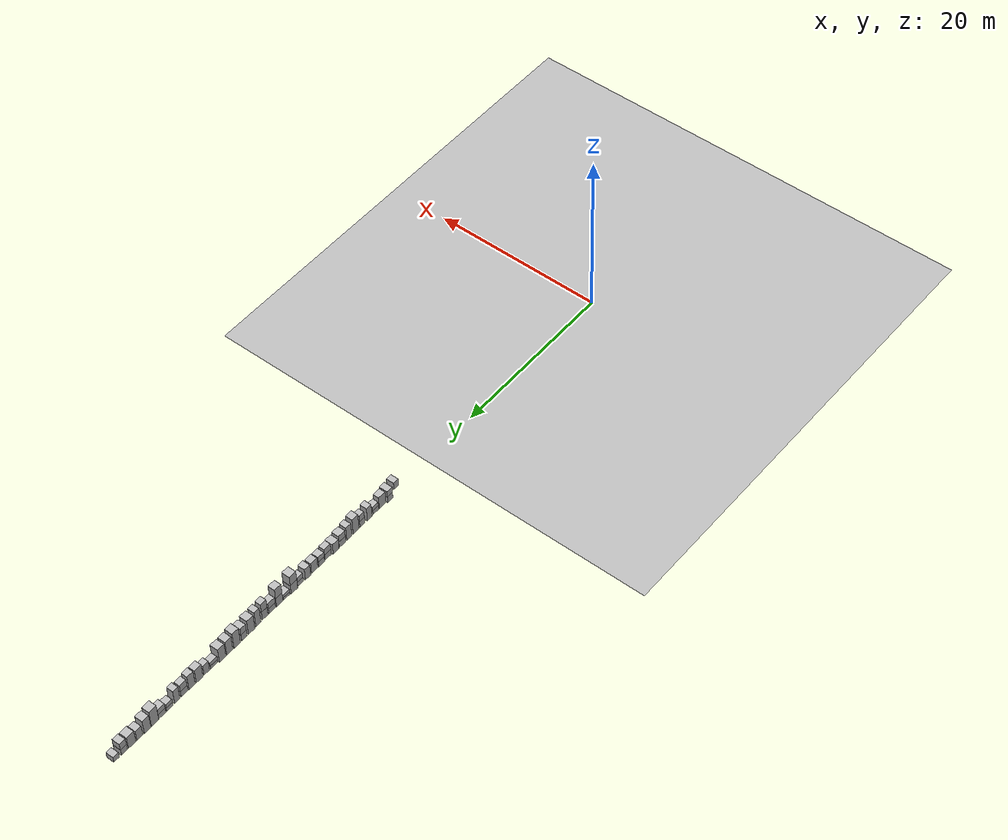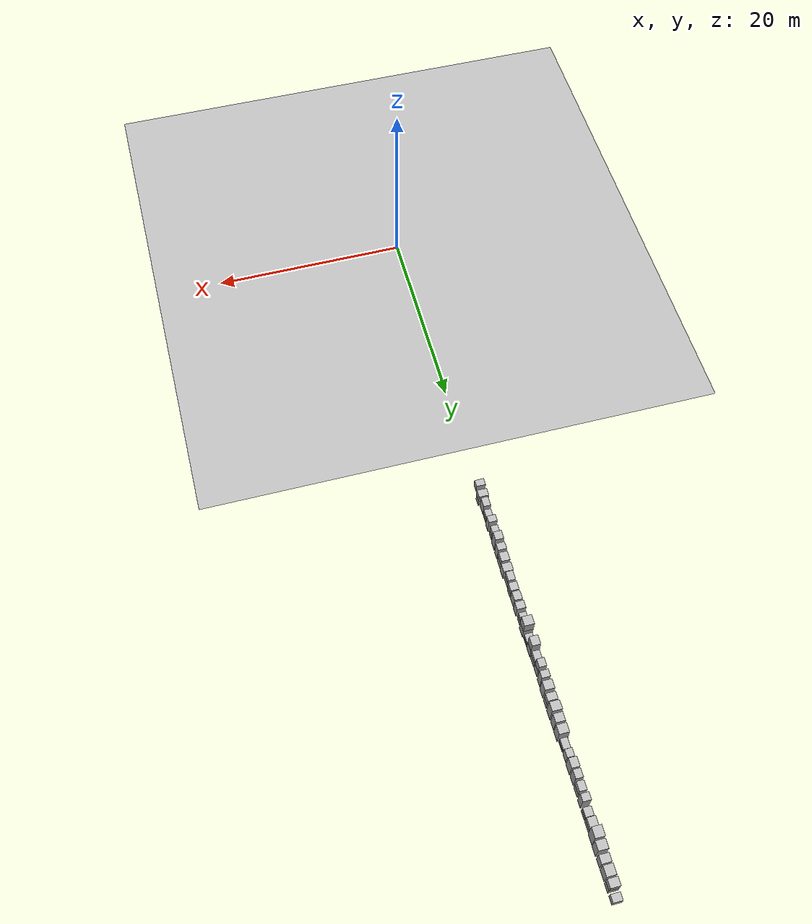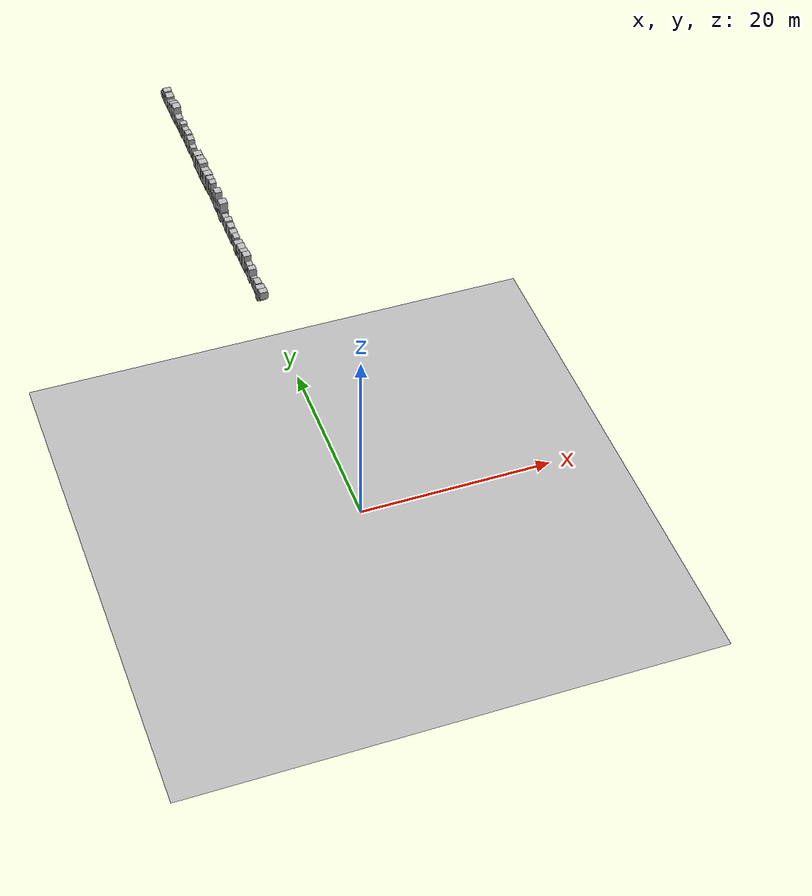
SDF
<sdf version="1.5">
 <world name="default">
  <model name="ground_plane">
   <static>true</static>
   <link name="link">
    <collision name="collision">
     <geometry><plane><normal>0 0 1</normal><size>250 250</size></plane></geometry>
     <surface><friction><ode><mu>1</mu><mu2>1</mu2></ode></friction></surface>
    </collision>
    <visual name="grass">
     <cast_shadows>false</cast_shadows>
     <geometry><mesh><uri>file://grass_plane/meshes/grass_plane.dae</uri></mesh></geometry>
    </visual>
   </link>
  </model>
  <model name="Cardboard_box_top_502">
   <link name="link_0">
    <pose>0 32 0.994805772918 0 0 0</pose>
    <inertial>
     <mass>1</mass>
     <inertia>
      <ixx>0.166667</ixx>
      <ixy>0</ixy>
      <ixz>0</ixz>
      <iyy>0.166667</iyy>
      <iyz>0</iyz>
      <izz>0.166667</izz>
     </inertia>
    </inertial>
    <collision name="collision">
     <geometry>
      <mesh>
       <uri>model://Cardboard_box/meshes/cardboard_box.dae</uri>
       <scale>2.27750854951 1.75310440228 2.4870144323</scale>
      </mesh>
     </geometry>
    </collision>
    <visual name="visual">
     <geometry>
      <mesh>
       <uri>model://Cardboard_box/meshes/cardboard_box.dae</uri>
       <scale>2.27750854951 1.75310440228 2.4870144323</scale>
      </mesh>
     </geometry>
    </visual>
   </link>
   <static>1</static>
  </model>
  <model name="Cardboard_box_503">
   <link name="link_0">
    <pose>0 33 0 0 0 0</pose>
    <inertial>
     <mass>1</mass>
     <inertia>
      <ixx>0.166667</ixx>
      <ixy>0</ixy>
      <ixz>0</ixz>
      <iyy>0.166667</iyy>
      <iyz>0</iyz>
      <izz>0.166667</izz>
     </inertia>
    </inertial>
    <collision name="collision">
     <geometry>
      <mesh>
       <uri>model://Cardboard_box/meshes/cardboard_box.dae</uri>
       <scale>2.47928182416 1.94244097142 2.11249314702</scale>
      </mesh>
     </geometry>
    </collision>
    <visual name="visual">
     <geometry>
      <mesh>
       <uri>model://Cardboard_box/meshes/cardboard_box.dae</uri>
       <scale>2.47928182416 1.94244097142 2.11249314702</scale>
      </mesh>
     </geometry>
    </visual>
   </link>
   <static>1</static>
  </model>
  <model name="Cardboard_box_top_503">
   <link name="link_0">
    <pose>0 33 0.844997258807 0 0 0</pose>
    <inertial>
     <mass>1</mass>
     <inertia>
      <ixx>0.166667</ixx>
      <ixy>0</ixy>
      <ixz>0</ixz>
      <iyy>0.166667</iyy>
      <iyz>0</iyz>
      <izz>0.166667</izz>
     </inertia>
    </inertial>
    <collision name="collision">
     <geometry>
      <mesh>
       <uri>model://Cardboard_box/meshes/cardboard_box.dae</uri>
       <scale>2.47928182416 1.94244097142 2.11249314702</scale>
      </mesh>
     </geometry>
    </collision>
    <visual name="visual">
     <geometry>
      <mesh>
       <uri>model://Cardboard_box/meshes/cardboard_box.dae</uri>
       <scale>2.47928182416 1.94244097142 2.11249314702</scale>
      </mesh>
     </geometry>
    </visual>
   </link>
   <static>1</static>
  </model>
  <model name="Cardboard_box_504">
   <link name="link_0">
    <pose>0 34 0 0 0 0</pose>
    <inertial>
     <mass>1</mass>
     <inertia>
      <ixx>0.166667</ixx>
      <ixy>0</ixy>
      <ixz>0</ixz>
      <iyy>0.166667</iyy>
      <iyz>0</iyz>
      <izz>0.166667</izz>
     </inertia>
    </inertial>
    <collision name="collision">
     <geometry>
      <mesh>
       <uri>model://Cardboard_box/meshes/cardboard_box.dae</uri>
       <scale>1.76606885499 2.42979145734 4.28663718461</scale>
      </mesh>
     </geometry>
    </collision>
    <visual name="visual">
     <geometry>
      <mesh>
       <uri>model://Cardboard_box/meshes/cardboard_box.dae</uri>
       <scale>1.76606885499 2.42979145734 4.28663718461</scale>
      </mesh>
     </geometry>
    </visual>
   </link>
   <static>1</static>
  </model>
  <model name="Cardboard_box_505">
   <link name="link_0">
    <pose>0 35 0 0 0 0</pose>
    <inertial>
     <mass>1</mass>
     <inertia>
      <ixx>0.166667</ixx>
      <ixy>0</ixy>
      <ixz>0</ixz>
      <iyy>0.166667</iyy>
      <iyz>0</iyz>
      <izz>0.166667</izz>
     </inertia>
    </inertial>
    <collision name="collision">
     <geometry>
      <mesh>
       <uri>model://Cardboard_box/meshes/cardboard_box.dae</uri>
       <scale>1.71390264596 2.10995734952 1.47586357172</scale>
      </mesh>
     </geometry>
    </collision>
    <visual name="visual">
     <geometry>
      <mesh>
       <uri>model://Cardboard_box/meshes/cardboard_box.dae</uri>
       <scale>1.71390264596 2.10995734952 1.47586357172</scale>
      </mesh>
     </geometry>
    </visual>
   </link>
   <static>1</static>
  </model>
  <model name="Cardboard_box_top_505">
   <link name="link_0">
    <pose>0 35 0.590345428688 0 0 0</pose>
    <inertial>
     <mass>1</mass>
     <inertia>
      <ixx>0.166667</ixx>
      <ixy>0</ixy>
      <ixz>0</ixz>
      <iyy>0.166667</iyy>
      <iyz>0</iyz>
      <izz>0.166667</izz>
     </inertia>
    </inertial>
    <collision name="collision">
     <geometry>
      <mesh>
       <uri>model://Cardboard_box/meshes/cardboard_box.dae</uri>
       <scale>1.71390264596 2.10995734952 1.47586357172</scale>
      </mesh>
     </geometry>
    </collision>
    <visual name="visual">
     <geometry>
      <mesh>
       <uri>model://Cardboard_box/meshes/cardboard_box.dae</uri>
       <scale>1.71390264596 2.10995734952 1.47586357172</scale>
      </mesh>
     </geometry>
    </visual>
   </link>
   <static>1</static>
  </model>
  <model name="Cardboard_box_506">
   <link name="link_0">
    <pose>0 36 0 0 0 0</pose>
    <inertial>
     <mass>1</mass>
     <inertia>
      <ixx>0.166667</ixx>
      <ixy>0</ixy>
      <ixz>0</ixz>
      <iyy>0.166667</iyy>
      <iyz>0</iyz>
      <izz>0.166667</izz>
     </inertia>
    </inertial>
    <collision name="collision">
     <geometry>
      <mesh>
       <uri>model://Cardboard_box/meshes/cardboard_box.dae</uri>
       <scale>2.10222093144 1.74882732497 4.83049195094</scale>
      </mesh>
     </geometry>
    </collision>
    <visual name="visual">
     <geometry>
      <mesh>
       <uri>model://Cardboard_box/meshes/cardboard_box.dae</uri>
       <scale>2.10222093144 1.74882732497 4.83049195094</scale>
      </mesh>
     </geometry>
    </visual>
   </link>
   <static>1</static>
  </model>
  <model name="Cardboard_box_507">
   <link name="link_0">
    <pose>0 37 0 0 0 0</pose>
    <inertial>
     <mass>1</mass>
     <inertia>
      <ixx>0.166667</ixx>
      <ixy>0</ixy>
      <ixz>0</ixz>
      <iyy>0.166667</iyy>
      <iyz>0</iyz>
      <izz>0.166667</izz>
     </inertia>
    </inertial>
    <collision name="collision">
     <geometry>
      <mesh>
       <uri>model://Cardboard_box/meshes/cardboard_box.dae</uri>
       <scale>1.77486031132 1.84166277484 2.11917916845</scale>
      </mesh>
     </geometry>
    </collision>
    <visual name="visual">
     <geometry>
      <mesh>
       <uri>model://Cardboard_box/meshes/cardboard_box.dae</uri>
       <scale>1.77486031132 1.84166277484 2.11917916845</scale>
      </mesh>
     </geometry>
    </visual>
   </link>
   <static>1</static>
  </model>
  <model name="Cardboard_box_top_507">
   <link name="link_0">
    <pose>0 37 0.84767166738 0 0 0</pose>
    <inertial>
     <mass>1</mass>
     <inertia>
      <ixx>0.166667</ixx>
      <ixy>0</ixy>
      <ixz>0</ixz>
      <iyy>0.166667</iyy>
      <iyz>0</iyz>
      <izz>0.166667</izz>
     </inertia>
    </inertial>
    <collision name="collision">
     <geometry>
      <mesh>
       <uri>model://Cardboard_box/meshes/cardboard_box.dae</uri>
       <scale>1.77486031132 1.84166277484 2.11917916845</scale>
      </mesh>
     </geometry>
    </collision>
    <visual name="visual">
     <geometry>
      <mesh>
       <uri>model://Cardboard_box/meshes/cardboard_box.dae</uri>
       <scale>1.77486031132 1.84166277484 2.11917916845</scale>
      </mesh>
     </geometry>
    </visual>
   </link>
   <static>1</static>
  </model>
  <model name="Cardboard_box_508">
   <link name="link_0">
    <pose>0 38 0 0 0 0</pose>
    <inertial>
     <mass>1</mass>
     <inertia>
      <ixx>0.166667</ixx>
      <ixy>0</ixy>
      <ixz>0</ixz>
      <iyy>0.166667</iyy>
      <iyz>0</iyz>
      <izz>0.166667</izz>
     </inertia>
    </inertial>
    <collision name="collision">
     <geometry>
      <mesh>
       <uri>model://Cardboard_box/meshes/cardboard_box.dae</uri>
       <scale>2.07764509138 2.16180105577 5.68211873698</scale>
      </mesh>
     </geometry>
    </collision>
    <visual name="visual">
     <geometry>
      <mesh>
       <uri>model://Cardboard_box/meshes/cardboard_box.dae</uri>
       <scale>2.07764509138 2.16180105577 5.68211873698</scale>
      </mesh>
     </geometry>
    </visual>
   </link>
   <static>1</static>
  </model>
  <model name="Cardboard_box_509">
   <link name="link_0">
    <pose>0 39 0 0 0 0</pose>
    <inertial>
     <mass>1</mass>
     <inertia>
      <ixx>0.166667</ixx>
      <ixy>0</ixy>
      <ixz>0</ixz>
      <iyy>0.166667</iyy>
      <iyz>0</iyz>
      <izz>0.166667</izz>
     </inertia>
    </inertial>
    <collision name="collision">
     <geometry>
      <mesh>
       <uri>model://Cardboard_box/meshes/cardboard_box.dae</uri>
       <scale>2.11325167749 1.83662909522 4.83065639073</scale>
      </mesh>
     </geometry>
    </collision>
    <visual name="visual">
     <geometry>
      <mesh>
       <uri>model://Cardboard_box/meshes/cardboard_box.dae</uri>
       <scale>2.11325167749 1.83662909522 4.83065639073</scale>
      </mesh>
     </geometry>
    </visual>
   </link>
   <static>1</static>
  </model>
  <model name="Cardboard_box_510">
   <link name="link_0">
    <pose>0 40 0 0 0 0</pose>
    <inertial>
     <mass>1</mass>
     <inertia>
      <ixx>0.166667</ixx>
      <ixy>0</ixy>
      <ixz>0</ixz>
      <iyy>0.166667</iyy>
      <iyz>0</iyz>
      <izz>0.166667</izz>
     </inertia>
    </inertial>
    <collision name="collision">
     <geometry>
      <mesh>
       <uri>model://Cardboard_box/meshes/cardboard_box.dae</uri>
       <scale>2.10903304174 2.37104330728 2.18565462163</scale>
      </mesh>
     </geometry>
    </collision>
    <visual name="visual">
     <geometry>
      <mesh>
       <uri>model://Cardboard_box/meshes/cardboard_box.dae</uri>
       <scale>2.10903304174 2.37104330728 2.18565462163</scale>
      </mesh>
     </geometry>
    </visual>
   </link>
   <static>1</static>
  </model>
  <model name="Cardboard_box_top_510">
   <link name="link_0">
    <pose>0 40 0.874261848651 0 0 0</pose>
    <inertial>
     <mass>1</mass>
     <inertia>
      <ixx>0.166667</ixx>
      <ixy>0</ixy>
      <ixz>0</ixz>
      <iyy>0.166667</iyy>
      <iyz>0</iyz>
      <izz>0.166667</izz>
     </inertia>
    </inertial>
    <collision name="collision">
     <geometry>
      <mesh>
       <uri>model://Cardboard_box/meshes/cardboard_box.dae</uri>
       <scale>2.10903304174 2.37104330728 2.18565462163</scale>
      </mesh>
     </geometry>
    </collision>
    <visual name="visual">
     <geometry>
      <mesh>
       <uri>model://Cardboard_box/meshes/cardboard_box.dae</uri>
       <scale>2.10903304174 2.37104330728 2.18565462163</scale>
      </mesh>
     </geometry>
    </visual>
   </link>
   <static>1</static>
  </model>
  <model name="Cardboard_box_511">
   <link name="link_0">
    <pose>0 41 0 0 0 0</pose>
    <inertial>
     <mass>1</mass>
     <inertia>
      <ixx>0.166667</ixx>
      <ixy>0</ixy>
      <ixz>0</ixz>
      <iyy>0.166667</iyy>
      <iyz>0</iyz>
      <izz>0.166667</izz>
     </inertia>
    </inertial>
    <collision name="collision">
     <geometry>
      <mesh>
       <uri>model://Cardboard_box/meshes/cardboard_box.dae</uri>
       <scale>2.39619825212 2.13355259058 3.69879522024</scale>
      </mesh>
     </geometry>
    </collision>
    <visual name="visual">
     <geometry>
      <mesh>
       <uri>model://Cardboard_box/meshes/cardboard_box.dae</uri>
       <scale>2.39619825212 2.13355259058 3.69879522024</scale>
      </mesh>
     </geometry>
    </visual>
   </link>
   <static>1</static>
  </model>
  <model name="Cardboard_box_512">
   <link name="link_0">
    <pose>0 42 0 0 0 0</pose>
    <inertial>
     <mass>1</mass>
     <inertia>
      <ixx>0.166667</ixx>
      <ixy>0</ixy>
      <ixz>0</ixz>
      <iyy>0.166667</iyy>
      <iyz>0</iyz>
      <izz>0.166667</izz>
     </inertia>
    </inertial>
    <collision name="collision">
     <geometry>
      <mesh>
       <uri>model://Cardboard_box/meshes/cardboard_box.dae</uri>
       <scale>1.7283241849 2.30708087992 2.06398904003</scale>
      </mesh>
     </geometry>
    </collision>
    <visual name="visual">
     <geometry>
      <mesh>
       <uri>model://Cardboard_box/meshes/cardboard_box.dae</uri>
       <scale>1.7283241849 2.30708087992 2.06398904003</scale>
      </mesh>
     </geometry>
    </visual>
   </link>
   <static>1</static>
  </model>
  <model name="Cardboard_box_top_512">
   <link name="link_0">
    <pose>0 42 0.825595616011 0 0 0</pose>
    <inertial>
     <mass>1</mass>
     <inertia>
      <ixx>0.166667</ixx>
      <ixy>0</ixy>
      <ixz>0</ixz>
      <iyy>0.166667</iyy>
      <iyz>0</iyz>
      <izz>0.166667</izz>
     </inertia>
    </inertial>
    <collision name="collision">
     <geometry>
      <mesh>
       <uri>model://Cardboard_box/meshes/cardboard_box.dae</uri>
       <scale>1.7283241849 2.30708087992 2.06398904003</scale>
      </mesh>
     </geometry>
    </collision>
    <visual name="visual">
     <geometry>
      <mesh>
       <uri>model://Cardboard_box/meshes/cardboard_box.dae</uri>
       <scale>1.7283241849 2.30708087992 2.06398904003</scale>
      </mesh>
     </geometry>
    </visual>
   </link>
   <static>1</static>
  </model>
  <model name="Cardboard_box_513">
   <link name="link_0">
    <pose>0 43 0 0 0 0</pose>
    <inertial>
     <mass>1</mass>
     <inertia>
      <ixx>0.166667</ixx>
      <ixy>0</ixy>
      <ixz>0</ixz>
      <iyy>0.166667</iyy>
      <iyz>0</iyz>
      <izz>0.166667</izz>
     </inertia>
    </inertial>
    <collision name="collision">
     <geometry>
      <mesh>
       <uri>model://Cardboard_box/meshes/cardboard_box.dae</uri>
       <scale>2.02393105541 2.09190223555 1.82833910943</scale>
      </mesh>
     </geometry>
    </collision>
    <visual name="visual">
     <geometry>
      <mesh>
       <uri>model://Cardboard_box/meshes/cardboard_box.dae</uri>
       <scale>2.02393105541 2.09190223555 1.82833910943</scale>
      </mesh>
     </geometry>
    </visual>
   </link>
   <static>1</static>
  </model>
  <model name="Cardboard_box_top_513">
   <link name="link_0">
    <pose>0 43 0.731335643773 0 0 0</pose>
    <inertial>
     <mass>1</mass>
     <inertia>
      <ixx>0.166667</ixx>
      <ixy>0</ixy>
      <ixz>0</ixz>
      <iyy>0.166667</iyy>
      <iyz>0</iyz>
      <izz>0.166667</izz>
     </inertia>
    </inertial>
    <collision name="collision">
     <geometry>
      <mesh>
       <uri>model://Cardboard_box/meshes/cardboard_box.dae</uri>
       <scale>2.02393105541 2.09190223555 1.82833910943</scale>
      </mesh>
     </geometry>
    </collision>
    <visual name="visual">
     <geometry>
      <mesh>
       <uri>model://Cardboard_box/meshes/cardboard_box.dae</uri>
       <scale>2.02393105541 2.09190223555 1.82833910943</scale>
      </mesh>
     </geometry>
    </visual>
   </link>
   <static>1</static>
  </model>
  <model name="Cardboard_box_514">
   <link name="link_0">
    <pose>0 44 0 0 0 0</pose>
    <inertial>
     <mass>1</mass>
     <inertia>
      <ixx>0.166667</ixx>
      <ixy>0</ixy>
      <ixz>0</ixz>
      <iyy>0.166667</iyy>
      <iyz>0</iyz>
      <izz>0.166667</izz>
     </inertia>
    </inertial>
    <collision name="collision">
     <geometry>
      <mesh>
       <uri>model://Cardboard_box/meshes/cardboard_box.dae</uri>
       <scale>1.94584794459 2.26382866581 3.90977625074</scale>
      </mesh>
     </geometry>
    </collision>
    <visual name="visual">
     <geometry>
      <mesh>
       <uri>model://Cardboard_box/meshes/cardboard_box.dae</uri>
       <scale>1.94584794459 2.26382866581 3.90977625074</scale>
      </mesh>
     </geometry>
    </visual>
   </link>
   <static>1</static>
  </model>
  <model name="Cardboard_box_515">
   <link name="link_0">
    <pose>0 45 0 0 0 0</pose>
    <inertial>
     <mass>1</mass>
     <inertia>
      <ixx>0.166667</ixx>
      <ixy>0</ixy>
      <ixz>0</ixz>
      <iyy>0.166667</iyy>
      <iyz>0</iyz>
      <izz>0.166667</izz>
     </inertia>
    </inertial>
    <collision name="collision">
     <geometry>
      <mesh>
       <uri>model://Cardboard_box/meshes/cardboard_box.dae</uri>
       <scale>2.16747715889 1.90501023432 4.05297525836</scale>
      </mesh>
     </geometry>
    </collision>
    <visual name="visual">
     <geometry>
      <mesh>
       <uri>model://Cardboard_box/meshes/cardboard_box.dae</uri>
       <scale>2.16747715889 1.90501023432 4.05297525836</scale>
      </mesh>
     </geometry>
    </visual>
   </link>
   <static>1</static>
  </model>
  <model name="Cardboard_box_516">
   <link name="link_0">
    <pose>0 46 0 0 0 0</pose>
    <inertial>
     <mass>1</mass>
     <inertia>
      <ixx>0.166667</ixx>
      <ixy>0</ixy>
      <ixz>0</ixz>
      <iyy>0.166667</iyy>
      <iyz>0</iyz>
      <izz>0.166667</izz>
     </inertia>
    </inertial>
    <collision name="collision">
     <geometry>
      <mesh>
       <uri>model://Cardboard_box/meshes/cardboard_box.dae</uri>
       <scale>1.76915509013 1.99507513665 1.61868681822</scale>
      </mesh>
     </geometry>
    </collision>
    <visual name="visual">
     <geometry>
      <mesh>
       <uri>model://Cardboard_box/meshes/cardboard_box.dae</uri>
       <scale>1.76915509013 1.99507513665 1.61868681822</scale>
      </mesh>
     </geometry>
    </visual>
   </link>
   <static>1</static>
  </model>
  <model name="Cardboard_box_top_516">
   <link name="link_0">
    <pose>0 46 0.64747472729 0 0 0</pose>
    <inertial>
     <mass>1</mass>
     <inertia>
      <ixx>0.166667</ixx>
      <ixy>0</ixy>
      <ixz>0</ixz>
      <iyy>0.166667</iyy>
      <iyz>0</iyz>
      <izz>0.166667</izz>
     </inertia>
    </inertial>
    <collision name="collision">
     <geometry>
      <mesh>
       <uri>model://Cardboard_box/meshes/cardboard_box.dae</uri>
       <scale>1.76915509013 1.99507513665 1.61868681822</scale>
      </mesh>
     </geometry>
    </collision>
    <visual name="visual">
     <geometry>
      <mesh>
       <uri>model://Cardboard_box/meshes/cardboard_box.dae</uri>
       <scale>1.76915509013 1.99507513665 1.61868681822</scale>
      </mesh>
     </geometry>
    </visual>
   </link>
   <static>1</static>
  </model>
  <model name="Cardboard_box_517">
   <link name="link_0">
    <pose>0 47 0 0 0 0</pose>
    <inertial>
     <mass>1</mass>
     <inertia>
      <ixx>0.166667</ixx>
      <ixy>0</ixy>
      <ixz>0</ixz>
      <iyy>0.166667</iyy>
      <iyz>0</iyz>
      <izz>0.166667</izz>
     </inertia>
    </inertial>
    <collision name="collision">
     <geometry>
      <mesh>
       <uri>model://Cardboard_box/meshes/cardboard_box.dae</uri>
       <scale>2.39971662872 2.3107875231 3.29259887605</scale>
      </mesh>
     </geometry>
    </collision>
    <visual name="visual">
     <geometry>
      <mesh>
       <uri>model://Cardboard_box/meshes/cardboard_box.dae</uri>
       <scale>2.39971662872 2.3107875231 3.29259887605</scale>
      </mesh>
     </geometry>
    </visual>
   </link>
   <static>1</static>
  </model>
  <model name="Cardboard_box_top_517">
   <link name="link_0">
    <pose>0 47 1.31703955042 0 0 0</pose>
    <inertial>
     <mass>1</mass>
     <inertia>
      <ixx>0.166667</ixx>
      <ixy>0</ixy>
      <ixz>0</ixz>
      <iyy>0.166667</iyy>
      <iyz>0</iyz>
      <izz>0.166667</izz>
     </inertia>
    </inertial>
    <collision name="collision">
     <geometry>
      <mesh>
       <uri>model://Cardboard_box/meshes/cardboard_box.dae</uri>
       <scale>2.39971662872 2.3107875231 3.29259887605</scale>
      </mesh>
     </geometry>
    </collision>
    <visual name="visual">
     <geometry>
      <mesh>
       <uri>model://Cardboard_box/meshes/cardboard_box.dae</uri>
       <scale>2.39971662872 2.3107875231 3.29259887605</scale>
      </mesh>
     </geometry>
    </visual>
   </link>
   <static>1</static>
  </model>
  <model name="Cardboard_box_518">
   <link name="link_0">
    <pose>0 48 0 0 0 0</pose>
    <inertial>
     <mass>1</mass>
     <inertia>
      <ixx>0.166667</ixx>
      <ixy>0</ixy>
      <ixz>0</ixz>
      <iyy>0.166667</iyy>
      <iyz>0</iyz>
      <izz>0.166667</izz>
     </inertia>
    </inertial>
    <collision name="collision">
     <geometry>
      <mesh>
       <uri>model://Cardboard_box/meshes/cardboard_box.dae</uri>
       <scale>1.92952678384 2.32358738809 1.02084606586</scale>
      </mesh>
     </geometry>
    </collision>
    <visual name="visual">
     <geometry>
      <mesh>
       <uri>model://Cardboard_box/meshes/cardboard_box.dae</uri>
       <scale>1.92952678384 2.32358738809 1.02084606586</scale>
      </mesh>
     </geometry>
    </visual>
   </link>
   <static>1</static>
  </model>
  <model name="Cardboard_box_top_518">
   <link name="link_0">
    <pose>0 48 0.408338426344 0 0 0</pose>
    <inertial>
     <mass>1</mass>
     <inertia>
      <ixx>0.166667</ixx>
      <ixy>0</ixy>
      <ixz>0</ixz>
      <iyy>0.166667</iyy>
      <iyz>0</iyz>
      <izz>0.166667</izz>
     </inertia>
    </inertial>
    <collision name="collision">
     <geometry>
      <mesh>
       <uri>model://Cardboard_box/meshes/cardboard_box.dae</uri>
       <scale>1.92952678384 2.32358738809 1.02084606586</scale>
      </mesh>
     </geometry>
    </collision>
    <visual name="visual">
     <geometry>
      <mesh>
       <uri>model://Cardboard_box/meshes/cardboard_box.dae</uri>
       <scale>1.92952678384 2.32358738809 1.02084606586</scale>
      </mesh>
     </geometry>
    </visual>
   </link>
   <static>1</static>
  </model>
  <model name="Cardboard_box_519">
   <link name="link_0">
    <pose>0 49 0 0 0 0</pose>
    <inertial>
     <mass>1</mass>
     <inertia>
      <ixx>0.166667</ixx>
      <ixy>0</ixy>
      <ixz>0</ixz>
      <iyy>0.166667</iyy>
      <iyz>0</iyz>
      <izz>0.166667</izz>
     </inertia>
    </inertial>
    <collision name="collision">
     <geometry>
      <mesh>
       <uri>model://Cardboard_box/meshes/cardboard_box.dae</uri>
       <scale>2.04001229432 2.28376093959 3.32865213471</scale>
      </mesh>
     </geometry>
    </collision>
    <visual name="visual">
     <geometry>
      <mesh>
       <uri>model://Cardboard_box/meshes/cardboard_box.dae</uri>
       <scale>2.04001229432 2.28376093959 3.32865213471</scale>
      </mesh>
     </geometry>
    </visual>
   </link>
   <static>1</static>
  </model>
  <model name="Cardboard_box_top_519">
   <link name="link_0">
    <pose>0 49 1.33146085388 0 0 0</pose>
    <inertial>
     <mass>1</mass>
     <inertia>
      <ixx>0.166667</ixx>
      <ixy>0</ixy>
      <ixz>0</ixz>
      <iyy>0.166667</iyy>
      <iyz>0</iyz>
      <izz>0.166667</izz>
     </inertia>
    </inertial>
    <collision name="collision">
     <geometry>
      <mesh>
       <uri>model://Cardboard_box/meshes/cardboard_box.dae</uri>
       <scale>2.04001229432 2.28376093959 3.32865213471</scale>
      </mesh>
     </geometry>
    </collision>
    <visual name="visual">
     <geometry>
      <mesh>
       <uri>model://Cardboard_box/meshes/cardboard_box.dae</uri>
       <scale>2.04001229432 2.28376093959 3.32865213471</scale>
      </mesh>
     </geometry>
    </visual>
   </link>
   <static>1</static>
  </model>
  <model name="Cardboard_box_520">
   <link name="link_0">
    <pose>0 50 0 0 0 0</pose>
    <inertial>
     <mass>1</mass>
     <inertia>
      <ixx>0.166667</ixx>
      <ixy>0</ixy>
      <ixz>0</ixz>
      <iyy>0.166667</iyy>
      <iyz>0</iyz>
      <izz>0.166667</izz>
     </inertia>
    </inertial>
    <collision name="collision">
     <geometry>
      <mesh>
       <uri>model://Cardboard_box/meshes/cardboard_box.dae</uri>
       <scale>1.78414321794 2.40044924287 1.94551696473</scale>
      </mesh>
     </geometry>
    </collision>
    <visual name="visual">
     <geometry>
      <mesh>
       <uri>model://Cardboard_box/meshes/cardboard_box.dae</uri>
       <scale>1.78414321794 2.40044924287 1.94551696473</scale>
      </mesh>
     </geometry>
    </visual>
   </link>
   <static>1</static>
  </model>
  <model name="Cardboard_box_top_520">
   <link name="link_0">
    <pose>0 50 0.778206785892 0 0 0</pose>
    <inertial>
     <mass>1</mass>
     <inertia>
      <ixx>0.166667</ixx>
      <ixy>0</ixy>
      <ixz>0</ixz>
      <iyy>0.166667</iyy>
      <iyz>0</iyz>
      <izz>0.166667</izz>
     </inertia>
    </inertial>
    <collision name="collision">
     <geometry>
      <mesh>
       <uri>model://Cardboard_box/meshes/cardboard_box.dae</uri>
       <scale>1.78414321794 2.40044924287 1.94551696473</scale>
      </mesh>
     </geometry>
    </collision>
    <visual name="visual">
     <geometry>
      <mesh>
       <uri>model://Cardboard_box/meshes/cardboard_box.dae</uri>
       <scale>1.78414321794 2.40044924287 1.94551696473</scale>
      </mesh>
     </geometry>
    </visual>
   </link>
   <static>1</static>
  </model>
  <model name="Cardboard_box_521">
   <link name="link_0">
    <pose>0 51 0 0 0 0</pose>
    <inertial>
     <mass>1</mass>
     <inertia>
      <ixx>0.166667</ixx>
      <ixy>0</ixy>
      <ixz>0</ixz>
      <iyy>0.166667</iyy>
      <iyz>0</iyz>
      <izz>0.166667</izz>
     </inertia>
    </inertial>
    <collision name="collision">
     <geometry>
      <mesh>
       <uri>model://Cardboard_box/meshes/cardboard_box.dae</uri>
       <scale>1.79431446427 1.98720701139 2.97356398399</scale>
      </mesh>
     </geometry>
    </collision>
    <visual name="visual">
     <geometry>
      <mesh>
       <uri>model://Cardboard_box/meshes/cardboard_box.dae</uri>
       <scale>1.79431446427 1.98720701139 2.97356398399</scale>
      </mesh>
     </geometry>
    </visual>
   </link>
   <static>1</static>
  </model>
  <model name="Cardboard_box_top_521">
   <link name="link_0">
    <pose>0 51 1.18942559359 0 0 0</pose>
    <inertial>
     <mass>1</mass>
     <inertia>
      <ixx>0.166667</ixx>
      <ixy>0</ixy>
      <ixz>0</ixz>
      <iyy>0.166667</iyy>
      <iyz>0</iyz>
      <izz>0.166667</izz>
     </inertia>
    </inertial>
    <collision name="collision">
     <geometry>
      <mesh>
       <uri>model://Cardboard_box/meshes/cardboard_box.dae</uri>
       <scale>1.79431446427 1.98720701139 2.97356398399</scale>
      </mesh>
     </geometry>
    </collision>
    <visual name="visual">
     <geometry>
      <mesh>
       <uri>model://Cardboard_box/meshes/cardboard_box.dae</uri>
       <scale>1.79431446427 1.98720701139 2.97356398399</scale>
      </mesh>
     </geometry>
    </visual>
   </link>
   <static>1</static>
  </model>
  <model name="Cardboard_box_522">
   <link name="link_0">
    <pose>0 52 0 0 0 0</pose>
    <inertial>
     <mass>1</mass>
     <inertia>
      <ixx>0.166667</ixx>
      <ixy>0</ixy>
      <ixz>0</ixz>
      <iyy>0.166667</iyy>
      <iyz>0</iyz>
      <izz>0.166667</izz>
     </inertia>
    </inertial>
    <collision name="collision">
     <geometry>
      <mesh>
       <uri>model://Cardboard_box/meshes/cardboard_box.dae</uri>
       <scale>2.0290660516 1.75038351778 5.51306588814</scale>
      </mesh>
     </geometry>
    </collision>
    <visual name="visual">
     <geometry>
      <mesh>
       <uri>model://Cardboard_box/meshes/cardboard_box.dae</uri>
       <scale>2.0290660516 1.75038351778 5.51306588814</scale>
      </mesh>
     </geometry>
    </visual>
   </link>
   <static>1</static>
  </model>
  <model name="Cardboard_box_523">
   <link name="link_0">
    <pose>0 53 0 0 0 0</pose>
    <inertial>
     <mass>1</mass>
     <inertia>
      <ixx>0.166667</ixx>
      <ixy>0</ixy>
      <ixz>0</ixz>
      <iyy>0.166667</iyy>
      <iyz>0</iyz>
      <izz>0.166667</izz>
     </inertia>
    </inertial>
    <collision name="collision">
     <geometry>
      <mesh>
       <uri>model://Cardboard_box/meshes/cardboard_box.dae</uri>
       <scale>2.33960593176 2.22190602645 5.2843348399</scale>
      </mesh>
     </geometry>
    </collision>
    <visual name="visual">
     <geometry>
      <mesh>
       <uri>model://Cardboard_box/meshes/cardboard_box.dae</uri>
       <scale>2.33960593176 2.22190602645 5.2843348399</scale>
      </mesh>
     </geometry>
    </visual>
   </link>
   <static>1</static>
  </model>
  <model name="Cardboard_box_524">
   <link name="link_0">
    <pose>0 54 0 0 0 0</pose>
    <inertial>
     <mass>1</mass>
     <inertia>
      <ixx>0.166667</ixx>
      <ixy>0</ixy>
      <ixz>0</ixz>
      <iyy>0.166667</iyy>
      <iyz>0</iyz>
      <izz>0.166667</izz>
     </inertia>
    </inertial>
    <collision name="collision">
     <geometry>
      <mesh>
       <uri>model://Cardboard_box/meshes/cardboard_box.dae</uri>
       <scale>2.33402224845 1.81885608631 2.32419916706</scale>
      </mesh>
     </geometry>
    </collision>
    <visual name="visual">
     <geometry>
      <mesh>
       <uri>model://Cardboard_box/meshes/cardboard_box.dae</uri>
       <scale>2.33402224845 1.81885608631 2.32419916706</scale>
      </mesh>
     </geometry>
    </visual>
   </link>
   <static>1</static>
  </model>
  <model name="Cardboard_box_top_524">
   <link name="link_0">
    <pose>0 54 0.929679666822 0 0 0</pose>
    <inertial>
     <mass>1</mass>
     <inertia>
      <ixx>0.166667</ixx>
      <ixy>0</ixy>
      <ixz>0</ixz>
      <iyy>0.166667</iyy>
      <iyz>0</iyz>
      <izz>0.166667</izz>
     </inertia>
    </inertial>
    <collision name="collision">
     <geometry>
      <mesh>
       <uri>model://Cardboard_box/meshes/cardboard_box.dae</uri>
       <scale>2.33402224845 1.81885608631 2.32419916706</scale>
      </mesh>
     </geometry>
    </collision>
    <visual name="visual">
     <geometry>
      <mesh>
       <uri>model://Cardboard_box/meshes/cardboard_box.dae</uri>
       <scale>2.33402224845 1.81885608631 2.32419916706</scale>
      </mesh>
     </geometry>
    </visual>
   </link>
   <static>1</static>
  </model>
  <model name="Cardboard_box_525">
   <link name="link_0">
    <pose>0 55 0 0 0 0</pose>
    <inertial>
     <mass>1</mass>
     <inertia>
      <ixx>0.166667</ixx>
      <ixy>0</ixy>
      <ixz>0</ixz>
      <iyy>0.166667</iyy>
      <iyz>0</iyz>
      <izz>0.166667</izz>
     </inertia>
    </inertial>
    <collision name="collision">
     <geometry>
      <mesh>
       <uri>model://Cardboard_box/meshes/cardboard_box.dae</uri>
       <scale>2.38985488884 2.20551458548 5.64729248849</scale>
      </mesh>
     </geometry>
    </collision>
    <visual name="visual">
     <geometry>
      <mesh>
       <uri>model://Cardboard_box/meshes/cardboard_box.dae</uri>
       <scale>2.38985488884 2.20551458548 5.64729248849</scale>
      </mesh>
     </geometry>
    </visual>
   </link>
   <static>1</static>
  </model>
  <model name="Cardboard_box_526">
   <link name="link_0">
    <pose>0 56 0 0 0 0</pose>
    <inertial>
     <mass>1</mass>
     <inertia>
      <ixx>0.166667</ixx>
      <ixy>0</ixy>
      <ixz>0</ixz>
      <iyy>0.166667</iyy>
      <iyz>0</iyz>
      <izz>0.166667</izz>
     </inertia>
    </inertial>
    <collision name="collision">
     <geometry>
      <mesh>
       <uri>model://Cardboard_box/meshes/cardboard_box.dae</uri>
       <scale>2.28377376926 2.07633722111 5.07104523595</scale>
      </mesh>
     </geometry>
    </collision>
    <visual name="visual">
     <geometry>
      <mesh>
       <uri>model://Cardboard_box/meshes/cardboard_box.dae</uri>
       <scale>2.28377376926 2.07633722111 5.07104523595</scale>
      </mesh>
     </geometry>
    </visual>
   </link>
   <static>1</static>
  </model>
  <model name="Cardboard_box_527">
   <link name="link_0">
    <pose>0 57 0 0 0 0</pose>
    <inertial>
     <mass>1</mass>
     <inertia>
      <ixx>0.166667</ixx>
      <ixy>0</ixy>
      <ixz>0</ixz>
      <iyy>0.166667</iyy>
      <iyz>0</iyz>
      <izz>0.166667</izz>
     </inertia>
    </inertial>
    <collision name="collision">
     <geometry>
      <mesh>
       <uri>model://Cardboard_box/meshes/cardboard_box.dae</uri>
       <scale>2.42631700519 2.19930982691 4.902484645</scale>
      </mesh>
     </geometry>
    </collision>
    <visual name="visual">
     <geometry>
      <mesh>
       <uri>model://Cardboard_box/meshes/cardboard_box.dae</uri>
       <scale>2.42631700519 2.19930982691 4.902484645</scale>
      </mesh>
     </geometry>
    </visual>
   </link>
   <static>1</static>
  </model>
  <model name="Cardboard_box_528">
   <link name="link_0">
    <pose>0 58 0 0 0 0</pose>
    <inertial>
     <mass>1</mass>
     <inertia>
      <ixx>0.166667</ixx>
      <ixy>0</ixy>
      <ixz>0</ixz>
      <iyy>0.166667</iyy>
      <iyz>0</iyz>
      <izz>0.166667</izz>
     </inertia>
    </inertial>
    <collision name="collision">
     <geometry>
      <mesh>
       <uri>model://Cardboard_box/meshes/cardboard_box.dae</uri>
       <scale>1.71712574231 2.45335288942 1.15439549391</scale>
      </mesh>
     </geometry>
    </collision>
    <visual name="visual">
     <geometry>
      <mesh>
       <uri>model://Cardboard_box/meshes/cardboard_box.dae</uri>
       <scale>1.71712574231 2.45335288942 1.15439549391</scale>
      </mesh>
     </geometry>
    </visual>
   </link>
   <static>1</static>
  </model>
  <model name="Cardboard_box_top_528">
   <link name="link_0">
    <pose>0 58 0.461758197562 0 0 0</pose>
    <inertial>
     <mass>1</mass>
     <inertia>
      <ixx>0.166667</ixx>
      <ixy>0</ixy>
      <ixz>0</ixz>
      <iyy>0.166667</iyy>
      <iyz>0</iyz>
      <izz>0.166667</izz>
     </inertia>
    </inertial>
    <collision name="collision">
     <geometry>
      <mesh>
       <uri>model://Cardboard_box/meshes/cardboard_box.dae</uri>
       <scale>1.71712574231 2.45335288942 1.15439549391</scale>
      </mesh>
     </geometry>
    </collision>
    <visual name="visual">
     <geometry>
      <mesh>
       <uri>model://Cardboard_box/meshes/cardboard_box.dae</uri>
       <scale>1.71712574231 2.45335288942 1.15439549391</scale>
      </mesh>
     </geometry>
    </visual>
   </link>
   <static>1</static>
  </model>
  <model name="Cardboard_box_529">
   <link name="link_0">
    <pose>0 59 0 0 0 0</pose>
    <inertial>
     <mass>1</mass>
     <inertia>
      <ixx>0.166667</ixx>
      <ixy>0</ixy>
      <ixz>0</ixz>
      <iyy>0.166667</iyy>
      <iyz>0</iyz>
      <izz>0.166667</izz>
     </inertia>
    </inertial>
    <collision name="collision">
     <geometry>
      <mesh>
       <uri>model://Cardboard_box/meshes/cardboard_box.dae</uri>
       <scale>1.71481344809 1.89132503008 3.55932385988</scale>
      </mesh>
     </geometry>
    </collision>
    <visual name="visual">
     <geometry>
      <mesh>
       <uri>model://Cardboard_box/meshes/cardboard_box.dae</uri>
       <scale>1.71481344809 1.89132503008 3.55932385988</scale>
      </mesh>
     </geometry>
    </visual>
   </link>
   <static>1</static>
  </model>
  <model name="Cardboard_box_530">
   <link name="link_0">
    <pose>0 60 0 0 0 0</pose>
    <inertial>
     <mass>1</mass>
     <inertia>
      <ixx>0.166667</ixx>
      <ixy>0</ixy>
      <ixz>0</ixz>
      <iyy>0.166667</iyy>
      <iyz>0</iyz>
      <izz>0.166667</izz>
     </inertia>
    </inertial>
    <collision name="collision">
     <geometry>
      <mesh>
       <uri>model://Cardboard_box/meshes/cardboard_box.dae</uri>
       <scale>1.89559962989 2.2755288824 4.83901568559</scale>
      </mesh>
     </geometry>
    </collision>
    <visual name="visual">
     <geometry>
      <mesh>
       <uri>model://Cardboard_box/meshes/cardboard_box.dae</uri>
       <scale>1.89559962989 2.2755288824 4.83901568559</scale>
      </mesh>
     </geometry>
    </visual>
   </link>
   <static>1</static>
  </model>
  <model name="Cardboard_box_531">
   <link name="link_0">
    <pose>0 61 0 0 0 0</pose>
    <inertial>
     <mass>1</mass>
     <inertia>
      <ixx>0.166667</ixx>
      <ixy>0</ixy>
      <ixz>0</ixz>
      <iyy>0.166667</iyy>
      <iyz>0</iyz>
      <izz>0.166667</izz>
     </inertia>
    </inertial>
    <collision name="collision">
     <geometry>
      <mesh>
       <uri>model://Cardboard_box/meshes/cardboard_box.dae</uri>
       <scale>1.76350974602 2.06645618134 5.03199157838</scale>
      </mesh>
     </geometry>
    </collision>
    <visual name="visual">
     <geometry>
      <mesh>
       <uri>model://Cardboard_box/meshes/cardboard_box.dae</uri>
       <scale>1.76350974602 2.06645618134 5.03199157838</scale>
      </mesh>
     </geometry>
    </visual>
   </link>
   <static>1</static>
  </model>
  <model name="Cardboard_box_532">
   <link name="link_0">
    <pose>0 62 0 0 0 0</pose>
    <inertial>
     <mass>1</mass>
     <inertia>
      <ixx>0.166667</ixx>
      <ixy>0</ixy>
      <ixz>0</ixz>
      <iyy>0.166667</iyy>
      <iyz>0</iyz>
      <izz>0.166667</izz>
     </inertia>
    </inertial>
    <collision name="collision">
     <geometry>
      <mesh>
       <uri>model://Cardboard_box/meshes/cardboard_box.dae</uri>
       <scale>1.75013247317 2.21479851936 2.20893631428</scale>
      </mesh>
     </geometry>
    </collision>
    <visual name="visual">
     <geometry>
      <mesh>
       <uri>model://Cardboard_box/meshes/cardboard_box.dae</uri>
       <scale>1.75013247317 2.21479851936 2.20893631428</scale>
      </mesh>
     </geometry>
    </visual>
   </link>
   <static>1</static>
  </model>
  <model name="Cardboard_box_top_532">
   <link name="link_0">
    <pose>0 62 0.88357452571 0 0 0</pose>
    <inertial>
     <mass>1</mass>
     <inertia>
      <ixx>0.166667</ixx>
      <ixy>0</ixy>
      <ixz>0</ixz>
      <iyy>0.166667</iyy>
      <iyz>0</iyz>
      <izz>0.166667</izz>
     </inertia>
    </inertial>
    <collision name="collision">
     <geometry>
      <mesh>
       <uri>model://Cardboard_box/meshes/cardboard_box.dae</uri>
       <scale>1.75013247317 2.21479851936 2.20893631428</scale>
      </mesh>
     </geometry>
    </collision>
    <visual name="visual">
     <geometry>
      <mesh>
       <uri>model://Cardboard_box/meshes/cardboard_box.dae</uri>
       <scale>1.75013247317 2.21479851936 2.20893631428</scale>
      </mesh>
     </geometry>
    </visual>
   </link>
   <static>1</static>
  </model>
  <model name="Cardboard_box_533">
   <link name="link_0">
    <pose>0 63 0 0 0 0</pose>
    <inertial>
     <mass>1</mass>
     <inertia>
      <ixx>0.166667</ixx>
      <ixy>0</ixy>
      <ixz>0</ixz>
      <iyy>0.166667</iyy>
      <iyz>0</iyz>
      <izz>0.166667</izz>
     </inertia>
    </inertial>
    <collision name="collision">
     <geometry>
      <mesh>
       <uri>model://Cardboard_box/meshes/cardboard_box.dae</uri>
       <scale>1.95263561651 1.76090131488 4.87526045376</scale>
      </mesh>
     </geometry>
    </collision>
    <visual name="visual">
     <geometry>
      <mesh>
       <uri>model://Cardboard_box/meshes/cardboard_box.dae</uri>
       <scale>1.95263561651 1.76090131488 4.87526045376</scale>
      </mesh>
     </geometry>
    </visual>
   </link>
   <static>1</static>
  </model>
  <model name="Cardboard_box_534">
   <link name="link_0">
    <pose>0 64 0 0 0 0</pose>
    <inertial>
     <mass>1</mass>
     <inertia>
      <ixx>0.166667</ixx>
      <ixy>0</ixy>
      <ixz>0</ixz>
      <iyy>0.166667</iyy>
      <iyz>0</iyz>
      <izz>0.166667</izz>
     </inertia>
    </inertial>
    <collision name="collision">
     <geometry>
      <mesh>
       <uri>model://Cardboard_box/meshes/cardboard_box.dae</uri>
       <scale>1.93393685087 2.07318776744 1.26330171025</scale>
      </mesh>
     </geometry>
    </collision>
    <visual name="visual">
     <geometry>
      <mesh>
       <uri>model://Cardboard_box/meshes/cardboard_box.dae</uri>
       <scale>1.93393685087 2.07318776744 1.26330171025</scale>
      </mesh>
     </geometry>
    </visual>
   </link>
   <static>1</static>
  </model>
  <model name="Cardboard_box_top_534">
   <link name="link_0">
    <pose>0 64 0.505320684101 0 0 0</pose>
    <inertial>
     <mass>1</mass>
     <inertia>
      <ixx>0.166667</ixx>
      <ixy>0</ixy>
      <ixz>0</ixz>
      <iyy>0.166667</iyy>
      <iyz>0</iyz>
      <izz>0.166667</izz>
     </inertia>
    </inertial>
    <collision name="collision">
     <geometry>
      <mesh>
       <uri>model://Cardboard_box/meshes/cardboard_box.dae</uri>
       <scale>1.93393685087 2.07318776744 1.26330171025</scale>
      </mesh>
     </geometry>
    </collision>
    <visual name="visual">
     <geometry>
      <mesh>
       <uri>model://Cardboard_box/meshes/cardboard_box.dae</uri>
       <scale>1.93393685087 2.07318776744 1.26330171025</scale>
      </mesh>
     </geometry>
    </visual>
   </link>
   <static>1</static>
  </model>
  <model name="Cardboard_box_535">
   <link name="link_0">
    <pose>0 65 0 0 0 0</pose>
    <inertial>
     <mass>1</mass>
     <inertia>
      <ixx>0.166667</ixx>
      <ixy>0</ixy>
      <ixz>0</ixz>
      <iyy>0.166667</iyy>
      <iyz>0</iyz>
      <izz>0.166667</izz>
     </inertia>
    </inertial>
    <collision name="collision">
     <geometry>
      <mesh>
       <uri>model://Cardboard_box/meshes/cardboard_box.dae</uri>
       <scale>1.99660632858 2.38167925226 1.72722859201</scale>
      </mesh>
     </geometry>
    </collision>
    <visual name="visual">
     <geometry>
      <mesh>
       <uri>model://Cardboard_box/meshes/cardboard_box.dae</uri>
       <scale>1.99660632858 2.38167925226 1.72722859201</scale>
      </mesh>
     </geometry>
    </visual>
   </link>
   <static>1</static>
  </model>
  <model name="Cardboard_box_top_535">
   <link name="link_0">
    <pose>0 65 0.690891436806 0 0 0</pose>
    <inertial>
     <mass>1</mass>
     <inertia>
      <ixx>0.166667</ixx>
      <ixy>0</ixy>
      <ixz>0</ixz>
      <iyy>0.166667</iyy>
      <iyz>0</iyz>
      <izz>0.166667</izz>
     </inertia>
    </inertial>
    <collision name="collision">
     <geometry>
      <mesh>
       <uri>model://Cardboard_box/meshes/cardboard_box.dae</uri>
       <scale>1.99660632858 2.38167925226 1.72722859201</scale>
      </mesh>
     </geometry>
    </collision>
    <visual name="visual">
     <geometry>
      <mesh>
       <uri>model://Cardboard_box/meshes/cardboard_box.dae</uri>
       <scale>1.99660632858 2.38167925226 1.72722859201</scale>
      </mesh>
     </geometry>
    </visual>
   </link>
   <static>1</static>
  </model>
  <model name="Cardboard_box_536">
   <link name="link_0">
    <pose>0 66 0 0 0 0</pose>
    <inertial>
     <mass>1</mass>
     <inertia>
      <ixx>0.166667</ixx>
      <ixy>0</ixy>
      <ixz>0</ixz>
      <iyy>0.166667</iyy>
      <iyz>0</iyz>
      <izz>0.166667</izz>
     </inertia>
    </inertial>
    <collision name="collision">
     <geometry>
      <mesh>
       <uri>model://Cardboard_box/meshes/cardboard_box.dae</uri>
       <scale>2.24858535892 2.44071822793 5.73834752376</scale>
      </mesh>
     </geometry>
    </collision>
    <visual name="visual">
     <geometry>
      <mesh>
       <uri>model://Cardboard_box/meshes/cardboard_box.dae</uri>
       <scale>2.24858535892 2.44071822793 5.73834752376</scale>
      </mesh>
     </geometry>
    </visual>
   </link>
   <static>1</static>
  </model>
  <model name="Cardboard_box_537">
   <link name="link_0">
    <pose>0 67 0 0 0 0</pose>
    <inertial>
     <mass>1</mass>
     <inertia>
      <ixx>0.166667</ixx>
      <ixy>0</ixy>
      <ixz>0</ixz>
      <iyy>0.166667</iyy>
      <iyz>0</iyz>
      <izz>0.166667</izz>
     </inertia>
    </inertial>
    <collision name="collision">
     <geometry>
      <mesh>
       <uri>model://Cardboard_box/meshes/cardboard_box.dae</uri>
       <scale>2.35656805086 2.15525861364 4.8414496351</scale>
      </mesh>
     </geometry>
    </collision>
    <visual name="visual">
     <geometry>
      <mesh>
       <uri>model://Cardboard_box/meshes/cardboard_box.dae</uri>
       <scale>2.35656805086 2.15525861364 4.8414496351</scale>
      </mesh>
     </geometry>
    </visual>
   </link>
   <static>1</static>
  </model>
  <model name="Cardboard_box_538">
   <link name="link_0">
    <pose>0 68 0 0 0 0</pose>
    <inertial>
     <mass>1</mass>
     <inertia>
      <ixx>0.166667</ixx>
      <ixy>0</ixy>
      <ixz>0</ixz>
      <iyy>0.166667</iyy>
      <iyz>0</iyz>
      <izz>0.166667</izz>
     </inertia>
    </inertial>
    <collision name="collision">
     <geometry>
      <mesh>
       <uri>model://Cardboard_box/meshes/cardboard_box.dae</uri>
       <scale>2.28131429015 1.9144613753 3.67876176737</scale>
      </mesh>
     </geometry>
    </collision>
    <visual name="visual">
     <geometry>
      <mesh>
       <uri>model://Cardboard_box/meshes/cardboard_box.dae</uri>
       <scale>2.28131429015 1.9144613753 3.67876176737</scale>
      </mesh>
     </geometry>
    </visual>
   </link>
   <static>1</static>
  </model>
  <model name="Cardboard_box_539">
   <link name="link_0">
    <pose>0 69 0 0 0 0</pose>
    <inertial>
     <mass>1</mass>
     <inertia>
      <ixx>0.166667</ixx>
      <ixy>0</ixy>
      <ixz>0</ixz>
      <iyy>0.166667</iyy>
      <iyz>0</iyz>
      <izz>0.166667</izz>
     </inertia>
    </inertial>
    <collision name="collision">
     <geometry>
      <mesh>
       <uri>model://Cardboard_box/meshes/cardboard_box.dae</uri>
       <scale>2.27962999687 2.3955758407 4.2036610163</scale>
      </mesh>
     </geometry>
    </collision>
    <visual name="visual">
     <geometry>
      <mesh>
       <uri>model://Cardboard_box/meshes/cardboard_box.dae</uri>
       <scale>2.27962999687 2.3955758407 4.2036610163</scale>
      </mesh>
     </geometry>
    </visual>
   </link>
   <static>1</static>
  </model>
  <model name="Cardboard_box_540">
   <link name="link_0">
    <pose>0 70 0 0 0 0</pose>
    <inertial>
     <mass>1</mass>
     <inertia>
      <ixx>0.166667</ixx>
      <ixy>0</ixy>
      <ixz>0</ixz>
      <iyy>0.166667</iyy>
      <iyz>0</iyz>
      <izz>0.166667</izz>
     </inertia>
    </inertial>
    <collision name="collision">
     <geometry>
      <mesh>
       <uri>model://Cardboard_box/meshes/cardboard_box.dae</uri>
       <scale>2.34253236593 1.94749741808 2.1697174965</scale>
      </mesh>
     </geometry>
    </collision>
    <visual name="visual">
     <geometry>
      <mesh>
       <uri>model://Cardboard_box/meshes/cardboard_box.dae</uri>
       <scale>2.34253236593 1.94749741808 2.1697174965</scale>
      </mesh>
     </geometry>
    </visual>
   </link>
   <static>1</static>
  </model>
  <model name="Cardboard_box_top_540">
   <link name="link_0">
    <pose>0 70 0.867886998598 0 0 0</pose>
    <inertial>
     <mass>1</mass>
     <inertia>
      <ixx>0.166667</ixx>
      <ixy>0</ixy>
      <ixz>0</ixz>
      <iyy>0.166667</iyy>
      <iyz>0</iyz>
      <izz>0.166667</izz>
     </inertia>
    </inertial>
    <collision name="collision">
     <geometry>
      <mesh>
       <uri>model://Cardboard_box/meshes/cardboard_box.dae</uri>
       <scale>2.34253236593 1.94749741808 2.1697174965</scale>
      </mesh>
     </geometry>
    </collision>
    <visual name="visual">
     <geometry>
      <mesh>
       <uri>model://Cardboard_box/meshes/cardboard_box.dae</uri>
       <scale>2.34253236593 1.94749741808 2.1697174965</scale>
      </mesh>
     </geometry>
    </visual>
   </link>
   <static>1</static>
  </model>
  <model name="Cardboard_box_541">
   <link name="link_0">
    <pose>0 71 0 0 0 0</pose>
    <inertial>
     <mass>1</mass>
     <inertia>
      <ixx>0.166667</ixx>
      <ixy>0</ixy>
      <ixz>0</ixz>
      <iyy>0.166667</iyy>
      <iyz>0</iyz>
      <izz>0.166667</izz>
     </inertia>
    </inertial>
    <collision name="collision">
     <geometry>
      <mesh>
       <uri>model://Cardboard_box/meshes/cardboard_box.dae</uri>
       <scale>2.22243146949 1.76237508644 1.96633561399</scale>
      </mesh>
     </geometry>
    </collision>
    <visual name="visual">
     <geometry>
      <mesh>
       <uri>model://Cardboard_box/meshes/cardboard_box.dae</uri>
       <scale>2.22243146949 1.76237508644 1.96633561399</scale>
      </mesh>
     </geometry>
    </visual>
   </link>
   <static>1</static>
  </model>
 </world>
</sdf>
